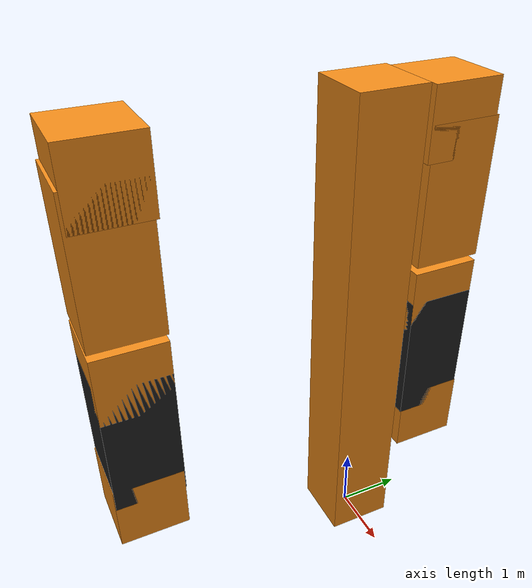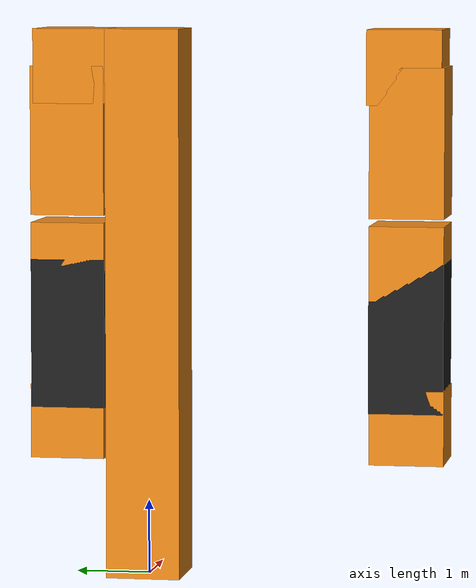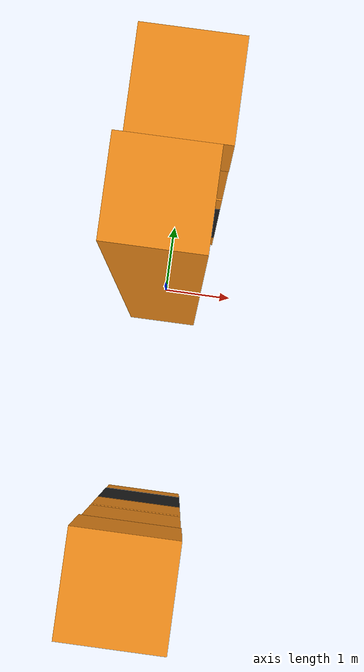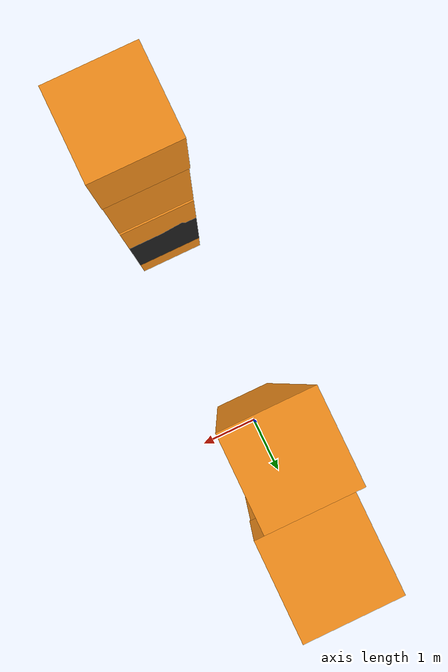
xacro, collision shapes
<?xml version="1.0"?>
<!-- Revolute-Revolute Manipulator -->
<robot name="arm" xmlns:xacro="http://www.ros.org/wiki/xacro">

  <!-- Constants for robot dimensions -->
  <xacro:property name="PI" value="3.1415926535897931"/>
  <xacro:property name="width" value="1.0" /> <!-- Square dimensions (widthxwidth) of beams -->
  <xacro:property name="height1" value="7.40" /> <!-- Link 1 -->
  <xacro:property name="height2" value="2" /> <!-- Link 2 -->
  <xacro:property name="height3" value="2" /> <!-- Link 3 -->
  <xacro:property name="elbow_width" value="1.0" /> <!-- The length of elbow -->
  <xacro:property name="axel_offset" value="0.05" /> <!-- Space btw top of beam and the each joint -->
  <xacro:property name="limit_lower" value="-1.57" /> <!-- Space btw top of beam and the each joint -->
  <xacro:property name="limit_upper" value="1.57" /> <!-- Space btw top of beam and the each joint -->
  <xacro:property name="limit_effort" value="30" /> <!-- Space btw top of beam and the each joint -->
  <xacro:property name="limit_velocity" value="30" /> <!-- Space btw top of beam and the each joint -->
  <xacro:property name="scale" value="0.4" />
  <xacro:property name="y_offset" value="0.14" />
  <xacro:property name="x_offset" value="0.10" />
  <xacro:property name="z_offset" value="0.10" />
  <xacro:property name="leftArm_offset" value="2.5" />
  <!-- Import all Gazebo-customization elements, including Gazebo colors -->
  <xacro:include filename="$(find arm_description)/urdf/arm.gazebo" />
  <!-- Import Rviz colors -->
  <xacro:include filename="$(find arm_description)/urdf/materials.xacro" />

  <!-- Used for fixing robot to Gazebo 'base_link' -->
  <link name="world"/>

  <joint name="fixed" type="fixed">
    <parent link="world"/>
    <child link="link1"/>
  </joint>

  <!-- Base Link -->
  <link name="link1">
    <collision>
      <origin xyz="0 0 ${height1/2}" rpy="0 0 0"/>
      <geometry>
	<box size="${width} ${width} ${height1}"/>
      </geometry>
    </collision>

    <visual>
      <origin xyz="1.1 -3.15 8" rpy="-1.57 0 1.57"/>
      <geometry>
	<mesh filename="package://arm_description/meshes/body.STL" scale="${scale+0.1} ${scale+0.1} ${scale+0.1}"/>
	<!--box size="${width} ${width} ${height1}"/-->
      </geometry>
      <material name="orange"/>
    </visual>

    <inertial>
      <origin xyz="0 0 ${height1/2}" rpy="0 0 0"/>
      <mass value="1000"/>
      <inertia
	  ixx="990.0" ixy="0.0" ixz="0.0"
	  iyy="990.0" iyz="0.0"
	  izz="990.0"/>
    </inertial>
  </link>

  <joint name="elbow1_1" type="continuous">
    <parent link="link1"/>
    <child link="elbow1"/>
    <origin xyz="${x_offset} ${width/2} ${height1-elbow_width/2}" rpy="0 0 0"/>
    <axis xyz="0 1 0"/>
    <dynamics damping="0.7"/>
    <limit effort="${limit_effort}" lower="${limit_lower}" upper="${limit_upper}" velocity="${limit_velocity}" />
    <safety_controller k_velocity="100" k_position="15" soft_lower_limit="-1.9" soft_upper_limit="0.5" />
  </joint>

  <!-- Elbow 1 Link -->
  <link name="elbow1">
    <collision>
      <origin xyz="0 ${elbow_width/2} 0" rpy="0 0 0"/>
      <geometry>
	<box size="${elbow_width} ${elbow_width} ${elbow_width}"/>
      </geometry>
    </collision>

    <visual>
      <origin xyz="${-elbow_width/2} 0 ${-elbow_width/2}" rpy="0 0 0"/>
      <geometry>
	<mesh filename="package://arm_description/meshes/shoulder_ball.STL" scale="0.4 0.4 0.4"/>
	<!--box size="${elbow_width} ${elbow_width} ${elbow_width}"/-->
      </geometry>
      <material name="orange"/>
    </visual>

    <inertial>
      <origin xyz="0 ${elbow_width/2} 0" rpy="0 0 0"/>
      <mass value="0.1"/>
      <inertia
	  ixx="0.1" ixy="0.0" ixz="0.0"
	  iyy="0.1" iyz="0.0"
	  izz="0.1"/>
    </inertial>
  </link>

  <joint name="elbow1_2" type="continuous">
    <parent link="elbow1"/>
    <child link="link2"/>
    <origin xyz="0 ${elbow_width/2+0.04} ${-elbow_width*0}" rpy="0 0 0"/>
    <axis xyz="1 0 0"/>
    <dynamics damping="0.7"/>
  </joint>

  <!-- Middle Link -->
  <link name="link2">
    <collision>
      <origin xyz="0 0 ${-height2/2}" rpy="0 0 0"/>
      <geometry>
	<box size="${width} ${width} ${height2}"/>
      </geometry>
    </collision>

    <visual>
      <origin xyz="${-elbow_width/2.7} ${-y_offset-0.4} ${height2/3.5}" rpy="-1.57 0 0"/>
      <geometry>
	<mesh filename="package://arm_description/meshes/shoulder_link.STL" scale="0.4 0.4 0.4"/>
      </geometry>
      <material name="orange"/>
    </visual>

    <inertial>
      <origin xyz="0 0 ${-height2/2}" rpy="0 0 0"/>
      <mass value="0.1"/>
      <inertia
	  ixx="10.1" ixy="0.0" ixz="0.0"
	  iyy="10.1" iyz="0.0"
	  izz="10.1"/>
    </inertial>
  </link>

  <joint name="elbow2_1" type="continuous">
    <parent link="link2"/>
    <child link="elbow2"/>
    <origin xyz="0 0 ${-height2-z_offset}" rpy="0 0 0"/>
    <axis xyz="0 0 1"/>
    <dynamics damping="0.7"/>
    <limit effort="${limit_effort}" lower="${limit_lower}" upper="${limit_upper}" velocity="${limit_velocity}" />
    <safety_controller k_velocity="100" k_position="15" soft_lower_limit="-1.9" soft_upper_limit="0.5" />

  </joint>

  <!-- Elbow 2 Link -->
  <link name="elbow2">
    <collision>
      <origin xyz="0 0 ${-elbow_width/2}" rpy="0 0 0"/>
      <geometry>
	<box size="${elbow_width} ${elbow_width} ${elbow_width}"/>
      </geometry>
    </collision>

    <visual>
      <origin xyz="${-elbow_width/2.5} ${-elbow_width/4-y_offset} ${z_offset-0.08}" rpy="-1.57 0 0"/>
      <geometry>
	<mesh filename="package://arm_description/meshes/elbow_ball.STL" scale="${scale} ${scale} ${scale}"/>
      </geometry>
      <material name="orange"/>
    </visual>

    <inertial>
      <origin xyz="0 0 ${-elbow_width/2}" rpy="0 0 0"/>
      <mass value="0.1"/>
      <inertia
	  ixx="0.1" ixy="0.0" ixz="0.0"
	  iyy="0.1" iyz="0.0"
	  izz="0.1"/>
    </inertial>
  </link>

  <joint name="elbow2_2" type="continuous">
    <parent link="elbow2"/>
    <child link="link3"/>
    <origin xyz="0 0 ${-elbow_width/2}" rpy="0 0 0"/>
    <axis xyz="1 0 0"/>
    <dynamics damping="0.7"/>
  </joint>

  <!-- Forearm Link -->
  <link name="link3">
    <collision>
      <origin xyz="0 0 ${-height3/2}" rpy="0 0 0"/>
      <geometry>
	<box size="${width} ${width} ${height3}"/>
      </geometry>
    </collision>

    <visual>
      <origin xyz="${-elbow_width/4.1} ${-elbow_width/4-y_offset} ${z_offset+0.3}" rpy="-1.57 0 0"/>
      <geometry>
	<mesh filename="package://arm_description/meshes/forearm_link.STL" scale="${scale} ${scale} ${scale}"/>
      </geometry>
      <material name="black"/>
    </visual>

    <inertial>
      <origin xyz="0 0 ${-height3/2}" rpy="0 0 0"/>
      <mass value="0.1"/>
      <inertia
	  ixx="3.1" ixy="0.0" ixz="0.0"
	  iyy="3.1" iyz="0.0"
	  izz="3.1"/>
    </inertial>
  </link>

  <joint name="elbow3_1" type="continuous">
    <parent link="link3"/>
    <child link="elbow3"/>
    <origin xyz="0 ${0.15-y_offset} ${-1.79+z_offset}" rpy="0 0 0"/>
    <axis xyz="0 0 0"/>
    <dynamics damping="0.7"/>
  </joint>

  <!-- Elbow 3 Link -->
  <link name="elbow3">
    <collision>
      <origin xyz="0 0 ${-elbow_width/2}" rpy="0 0 0"/>
      <geometry>
	<box size="${elbow_width} ${elbow_width} ${elbow_width}"/>
      </geometry>
    </collision>

    <visual>
      <origin xyz="${-elbow_width/5.5} ${-0.15-elbow_width/4.5} ${elbow_width/1.47}" rpy="0 3.14 0"/>
      <geometry>
	<mesh filename="package://arm_description/meshes/hand_assem.STL" scale="${scale} ${scale} ${scale}"/>
      </geometry>
      <material name="orange"/>
    </visual>

    <inertial>
      <origin xyz="0 0 ${-elbow_width/2}" rpy="0 0 0"/>
      <mass value="0.1"/>
      <inertia
	  ixx="0.1" ixy="0.0" ixz="0.0"
	  iyy="0.1" iyz="0.0"
	  izz="0.1"/>
    </inertial>
  </link>

  <joint name="left_elbow1_1" type="continuous">
    <parent link="link1"/>
    <child link="left_elbow1"/>
    <origin xyz="${x_offset} ${-width/2-leftArm_offset} ${height1-elbow_width/2}" rpy="0 0 3.14"/>
    <axis xyz="0 1 0"/>
    <dynamics damping="0.7"/>
    <limit effort="${limit_effort}" lower="${limit_lower}" upper="${limit_upper}" velocity="${limit_velocity}" />
    <safety_controller k_velocity="100" k_position="15" soft_lower_limit="-1.9" soft_upper_limit="0.5" />
  </joint>

  <link name="left_elbow1">
    <collision>
      <origin xyz="0 ${elbow_width/2} 0" rpy="0 0 0"/>
      <geometry>
	<box size="${elbow_width} ${elbow_width} ${elbow_width}"/>
      </geometry>
    </collision>

    <visual>
      <origin xyz="${-elbow_width/2} 0 ${-elbow_width/2}" rpy="0 0 0"/>
      <geometry>
	<mesh filename="package://arm_description/meshes/shoulder_ball.STL" scale="0.4 0.4 0.4"/>
	<!--box size="${elbow_width} ${elbow_width} ${elbow_width}"/-->
      </geometry>
      <material name="orange"/>
    </visual>

    <inertial>
      <origin xyz="0 ${elbow_width/2} 0" rpy="0 0 0"/>
      <mass value="0.1"/>
      <inertia
	  ixx="0.1" ixy="0.0" ixz="0.0"
	  iyy="0.1" iyz="0.0"
	  izz="0.1"/>
    </inertial>
  </link>

  <joint name="left_elbow1_2" type="continuous">
    <parent link="left_elbow1"/>
    <child link="left_link2"/>
    <origin xyz="0 ${elbow_width/2+0.04} ${-elbow_width*0}" rpy="0 0 0"/>
    <axis xyz="1 0 0"/>
    <dynamics damping="0.7"/>
  </joint>

  <!-- Middle Link -->
  <link name="left_link2">
    <collision>
      <origin xyz="0 0 ${-height2/2}" rpy="0 0 0"/>
      <geometry>
	<box size="${width} ${width} ${height2}"/>
      </geometry>
    </collision>

    <visual>
      <origin xyz="${-elbow_width/2.7} ${-y_offset-0.4} ${height2/3.5}" rpy="-1.57 0 0"/>
      <geometry>
	<mesh filename="package://arm_description/meshes/shoulder_link.STL" scale="0.4 0.4 0.4"/>
      </geometry>
      <material name="orange"/>
    </visual>

    <inertial>
      <origin xyz="0 0 ${-height2/2}" rpy="0 0 0"/>
      <mass value="0.1"/>
      <inertia
	  ixx="10.1" ixy="0.0" ixz="0.0"
	  iyy="10.1" iyz="0.0"
	  izz="10.1"/>
    </inertial>
  </link>

  <joint name="left_elbow2_1" type="continuous">
    <parent link="left_link2"/>
    <child link="left_elbow2"/>
    <origin xyz="0 0 ${-height2-z_offset}" rpy="0 0 0"/>
    <axis xyz="0 0 1"/>
    <dynamics damping="0.7"/>
    <limit effort="${limit_effort}" lower="${limit_lower}" upper="${limit_upper}" velocity="${limit_velocity}" />
    <safety_controller k_velocity="100" k_position="15" soft_lower_limit="-1.9" soft_upper_limit="0.5" />

  </joint>

  <!-- Elbow 2 Link -->
  <link name="left_elbow2">
    <collision>
      <origin xyz="0 0 ${-elbow_width/2}" rpy="0 0 0"/>
      <geometry>
	<box size="${elbow_width} ${elbow_width} ${elbow_width}"/>
      </geometry>
    </collision>

    <visual>
      <origin xyz="${-elbow_width/2.5} ${-elbow_width/4-y_offset} ${z_offset-0.08}" rpy="-1.57 0 0"/>
      <geometry>
	<mesh filename="package://arm_description/meshes/elbow_ball.STL" scale="${scale} ${scale} ${scale}"/>
      </geometry>
      <material name="orange"/>
    </visual>

    <inertial>
      <origin xyz="0 0 ${-elbow_width/2}" rpy="0 0 0"/>
      <mass value="0.1"/>
      <inertia
	  ixx="0.1" ixy="0.0" ixz="0.0"
	  iyy="0.1" iyz="0.0"
	  izz="0.1"/>
    </inertial>
  </link>

  <joint name="left_elbow2_2" type="continuous">
    <parent link="left_elbow2"/>
    <child link="left_link3"/>
    <origin xyz="0 0 ${-elbow_width/2}" rpy="0 0 0"/>
    <axis xyz="1 0 0"/>
    <dynamics damping="0.7"/>
  </joint>

  <!-- Forearm Link -->
  <link name="left_link3">
    <collision>
      <origin xyz="0 0 ${-height3/2}" rpy="0 0 0"/>
      <geometry>
	<box size="${width} ${width} ${height3}"/>
      </geometry>
    </collision>

    <visual>
      <origin xyz="${-elbow_width/4.1} ${-elbow_width/4-y_offset} ${z_offset+0.3}" rpy="-1.57 0 0"/>
      <geometry>
	<mesh filename="package://arm_description/meshes/forearm_link.STL" scale="${scale} ${scale} ${scale}"/>
      </geometry>
      <material name="black"/>
    </visual>

    <inertial>
      <origin xyz="0 0 ${-height3/2}" rpy="0 0 0"/>
      <mass value="0.1"/>
      <inertia
	  ixx="3.1" ixy="0.0" ixz="0.0"
	  iyy="3.1" iyz="0.0"
	  izz="3.1"/>
    </inertial>
  </link>

  <joint name="left_elbow3_1" type="continuous">
    <parent link="left_link3"/>
    <child link="left_elbow3"/>
    <origin xyz="0 ${0.15-y_offset} ${-1.79+z_offset}" rpy="0 0 0"/>
    <axis xyz="0 0 0"/>
    <dynamics damping="0.7"/>
  </joint>

  <!-- Hand Link -->
  <link name="left_elbow3">
    <collision>
      <origin xyz="0 0 ${-elbow_width/2}" rpy="0 0 0"/>
      <geometry>
	<box size="${elbow_width} ${elbow_width} ${elbow_width}"/>
      </geometry>
    </collision>

    <visual>
      <origin xyz="${elbow_width/3.5} ${-elbow_width/2.7} ${-elbow_width/1.37}" rpy="0 0 0"/>
      <geometry>
	<mesh filename="package://arm_description/meshes/hand_assem_left.STL" scale="${scale} ${scale} ${scale}"/>
      </geometry>
      <material name="orange"/>
    </visual>

    <inertial>
      <origin xyz="0 0 ${-elbow_width/2}" rpy="0 0 0"/>
      <mass value="0.1"/>
      <inertia
	  ixx="0.1" ixy="0.0" ixz="0.0"
	  iyy="0.1" iyz="0.0"
	  izz="0.1"/>
    </inertial>
  </link>

  <transmission name="tran_elbow1_1">
    <type>transmission_interface/SimpleTransmission</type>
    <joint name="elbow1_1">
      <hardwareInterface>EffortJointInterface</hardwareInterface>
    </joint>
    <actuator name="motor1_1">
      <hardwareInterface>EffortJointInterface</hardwareInterface>
      <mechanicalReduction>1</mechanicalReduction>
    </actuator>
  </transmission>

  <transmission name="tran_elbow1_2">
    <type>transmission_interface/SimpleTransmission</type>
    <joint name="elbow1_2">
      <hardwareInterface>EffortJointInterface</hardwareInterface>
    </joint>
    <actuator name="motor1_2">
      <hardwareInterface>EffortJointInterface</hardwareInterface>
      <mechanicalReduction>1</mechanicalReduction>
    </actuator>
  </transmission>

  <transmission name="tran_elbow2_1">
    <type>transmission_interface/SimpleTransmission</type>
    <joint name="elbow2_1">
      <hardwareInterface>EffortJointInterface</hardwareInterface>
    </joint>
    <actuator name="motor2_1">
      <hardwareInterface>EffortJointInterface</hardwareInterface>
      <mechanicalReduction>1</mechanicalReduction>
    </actuator>
  </transmission>

  <transmission name="tran_elbow2_2">
    <type>transmission_interface/SimpleTransmission</type>
    <joint name="elbow2_2">
      <hardwareInterface>EffortJointInterface</hardwareInterface>
    </joint>
    <actuator name="motor2_2">
      <hardwareInterface>EffortJointInterface</hardwareInterface>
      <mechanicalReduction>1</mechanicalReduction>
    </actuator>
  </transmission>

  <transmission name="tran_elbow3_1">
    <type>transmission_interface/SimpleTransmission</type>
    <joint name="elbow3_1">
      <hardwareInterface>EffortJointInterface</hardwareInterface>
    </joint>
    <actuator name="motor3_1">
      <hardwareInterface>EffortJointInterface</hardwareInterface>
      <mechanicalReduction>1</mechanicalReduction>
    </actuator>
  </transmission>

 <transmission name="left_tran_elbow1_1">
    <type>transmission_interface/SimpleTransmission</type>
    <joint name="left_elbow1_1">
      <hardwareInterface>EffortJointInterface</hardwareInterface>
    </joint>
    <actuator name="left_motor1_1">
      <hardwareInterface>EffortJointInterface</hardwareInterface>
      <mechanicalReduction>1</mechanicalReduction>
    </actuator>
  </transmission>

  <transmission name="left_tran_elbow1_2">
    <type>transmission_interface/SimpleTransmission</type>
    <joint name="left_elbow1_2">
      <hardwareInterface>EffortJointInterface</hardwareInterface>
    </joint>
    <actuator name="left_motor1_2">
      <hardwareInterface>EffortJointInterface</hardwareInterface>
      <mechanicalReduction>1</mechanicalReduction>
    </actuator>
  </transmission>

  <transmission name="left_tran_elbow2_1">
    <type>transmission_interface/SimpleTransmission</type>
    <joint name="left_elbow2_1">
      <hardwareInterface>EffortJointInterface</hardwareInterface>
    </joint>
    <actuator name="left_motor2_1">
      <hardwareInterface>EffortJointInterface</hardwareInterface>
      <mechanicalReduction>1</mechanicalReduction>
    </actuator>
  </transmission>

  <transmission name="left_tran_elbow2_2">
    <type>transmission_interface/SimpleTransmission</type>
    <joint name="left_elbow2_2">
      <hardwareInterface>EffortJointInterface</hardwareInterface>
    </joint>
    <actuator name="left_motor2_2">
      <hardwareInterface>EffortJointInterface</hardwareInterface>
      <mechanicalReduction>1</mechanicalReduction>
    </actuator>
  </transmission>

  <transmission name="left_tran_elbow3_1">
    <type>transmission_interface/SimpleTransmission</type>
    <joint name="left_elbow3_1">
      <hardwareInterface>EffortJointInterface</hardwareInterface>
    </joint>
    <actuator name="left_motor3_1">
      <hardwareInterface>EffortJointInterface</hardwareInterface>
      <mechanicalReduction>1</mechanicalReduction>
    </actuator>
  </transmission>

</robot>
